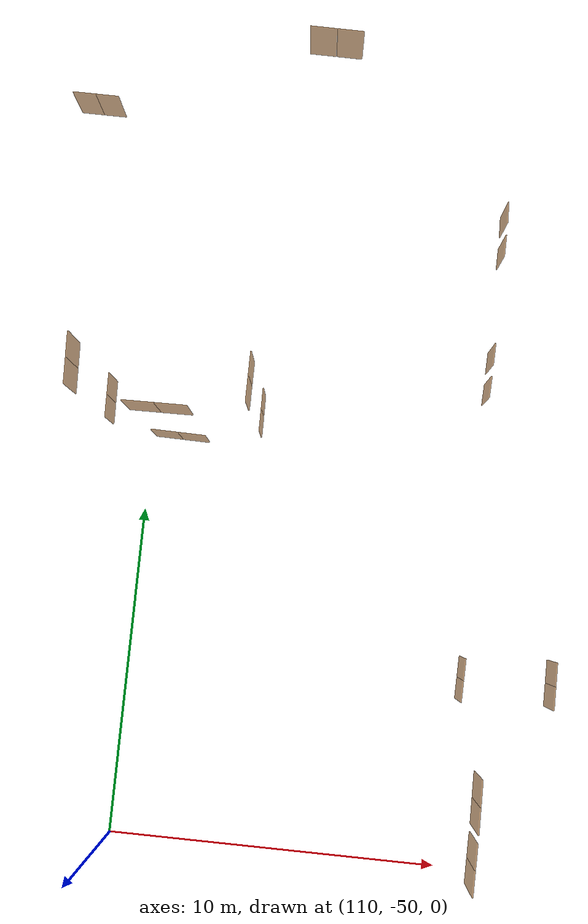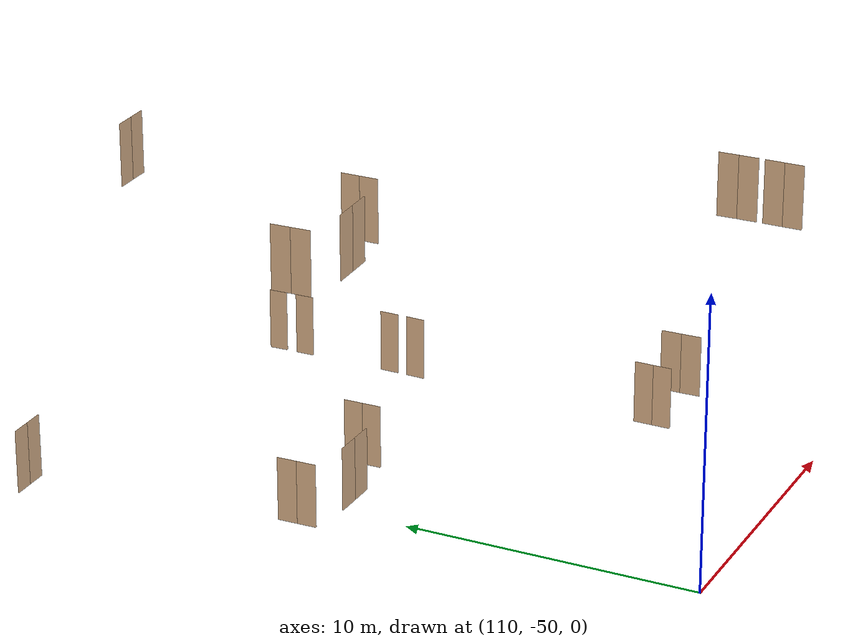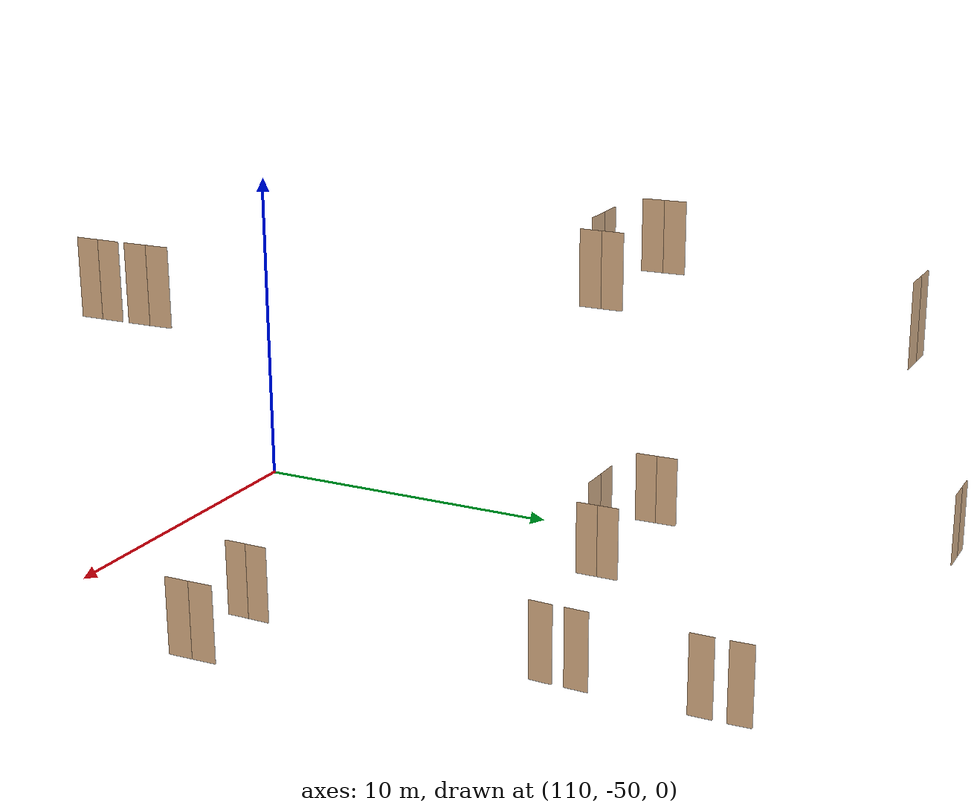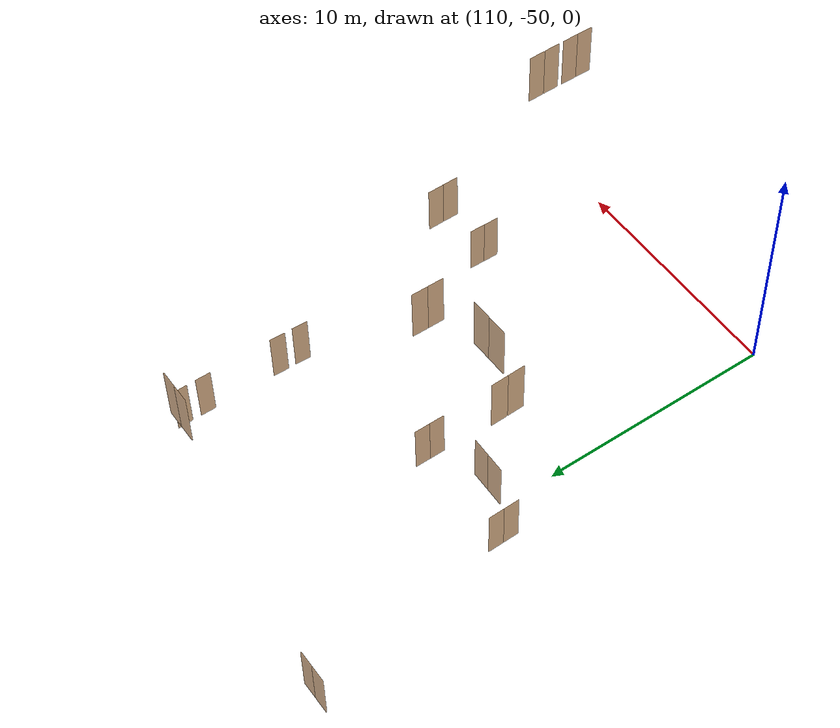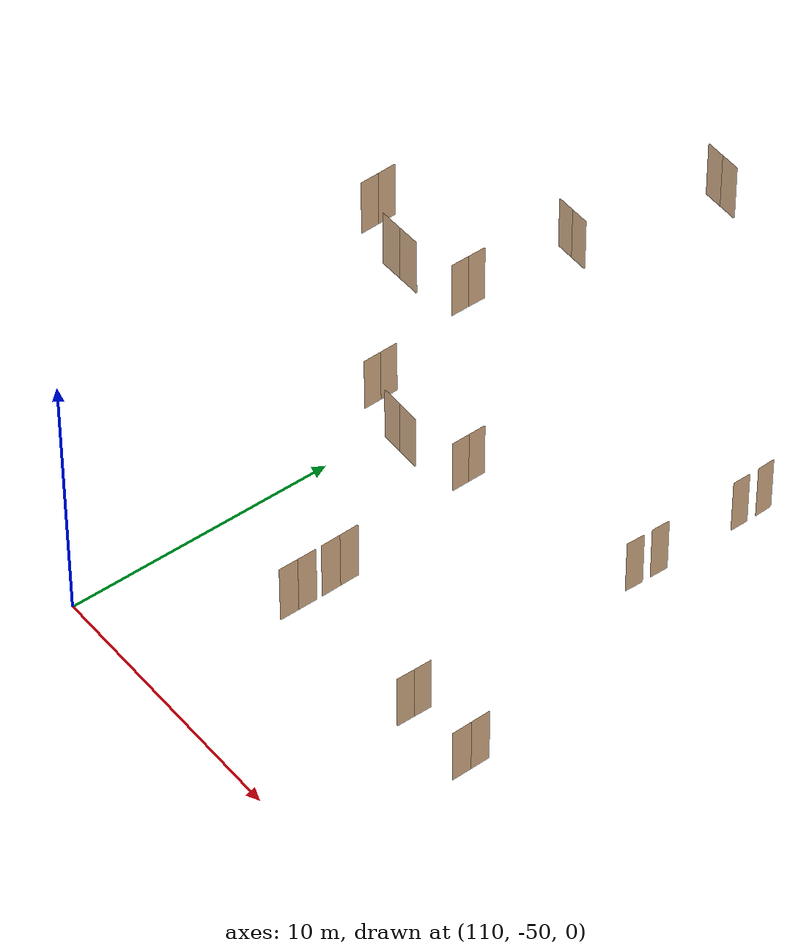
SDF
<sdf version="1.7">
 <world name="sim_world">
  <model name="TD2020CE">
   <pose>120.14336381928517 -30.01781770852497 0.0 0 0 -1.528039815718483</pose>
   <link name="right">
    <pose>0 0 1.11 0 0 0</pose>
    <visual name="right_visual">
     <geometry><box><size>0.6442829253050271 0.03 2.2</size></box></geometry>
     <material>
      <ambient>0.5 0.25 0 0.6</ambient>
      <diffuse>0.5 0.25 0 0.6</diffuse>
      <pbr><metal><metalness>0.0</metalness></metal></pbr>
     </material>
    </visual>
    <collision name="right_collision">
     <geometry><box><size>0.6442829253050271 0.03 2.2</size></box></geometry>
     <surface><contact><collide_bitmask>0x02</collide_bitmask></contact></surface>
    </collision>
    <inertial>
     <mass>50.0</mass>
     <inertia><ixx>20.17041666666667</ixx><iyy>21.896252032665018</iyy><izz>1.7333353659983464</izz></inertia>
    </inertial>
   </link>
   <joint name="right_joint" type="revolute">
    <parent>world</parent>
    <child>right</child>
    <axis><xyz>0 0 -1</xyz><limit><lower>0</lower><upper>1.57</upper></limit></axis>
    <pose>0.32714146265251354 0 0 0 0 0</pose>
   </joint>
   <plugin name="register_component" filename="libregister_component.so">
    <component name="Door">
     <v_max_door>0.5</v_max_door>
     <a_max_door>0.3</a_max_door>
     <a_nom_door>0.15</a_nom_door>
     <dx_min_door>0.01</dx_min_door>
     <f_max_door>500.0</f_max_door>
     <ros_interface>true</ros_interface>
     <door name="TD2020CE" type="SwingDoor" left_joint_name="empty_joint" right_joint_name="right_joint"/>
    </component>
   </plugin>
  </model>
  <model name="TD2019CE">
   <pose>120.15734698546525 -31.04027220638623 0.0 0 0 1.5707963267948966</pose>
   <link name="right">
    <pose>0 0 1.11 0 0 0</pose>
    <visual name="right_visual">
     <geometry><box><size>0.6541442813301737 0.03 2.2</size></box></geometry>
     <material>
      <ambient>0.5 0.25 0 0.6</ambient>
      <diffuse>0.5 0.25 0 0.6</diffuse>
      <pbr><metal><metalness>0.0</metalness></metal></pbr>
     </material>
    </visual>
    <collision name="right_collision">
     <geometry><box><size>0.6541442813301737 0.03 2.2</size></box></geometry>
     <surface><contact><collide_bitmask>0x02</collide_bitmask></contact></surface>
    </collision>
    <inertial>
     <mass>50.0</mass>
     <inertia><ixx>20.17041666666667</ixx><iyy>21.949603086654044</iyy><izz>1.7866864199873727</izz></inertia>
    </inertial>
   </link>
   <joint name="right_joint" type="revolute">
    <parent>world</parent>
    <child>right</child>
    <axis><xyz>0 0 1</xyz><limit><lower>0</lower><upper>1.57</upper></limit></axis>
    <pose>0.33207214066508683 0 0 0 0 0</pose>
   </joint>
   <plugin name="register_component" filename="libregister_component.so">
    <component name="Door">
     <v_max_door>0.5</v_max_door>
     <a_max_door>0.3</a_max_door>
     <a_nom_door>0.15</a_nom_door>
     <dx_min_door>0.01</dx_min_door>
     <f_max_door>500.0</f_max_door>
     <ros_interface>true</ros_interface>
     <door name="TD2019CE" type="SwingDoor" left_joint_name="empty_joint" right_joint_name="right_joint"/>
    </component>
   </plugin>
  </model>
  <model name="TD2018CE">
   <pose>120.1503554023752 -34.35754832249353 0.0 0 0 -1.5914136677952118</pose>
   <link name="right">
    <pose>0 0 1.11 0 0 0</pose>
    <visual name="right_visual">
     <geometry><box><size>0.6682716004693073 0.03 2.2</size></box></geometry>
     <material>
      <ambient>0.5 0.25 0 0.6</ambient>
      <diffuse>0.5 0.25 0 0.6</diffuse>
      <pbr><metal><metalness>0.0</metalness></metal></pbr>
     </material>
    </visual>
    <collision name="right_collision">
     <geometry><box><size>0.6682716004693073 0.03 2.2</size></box></geometry>
     <surface><contact><collide_bitmask>0x02</collide_bitmask></contact></surface>
    </collision>
    <inertial>
     <mass>50.0</mass>
     <inertia><ixx>20.17041666666667</ixx><iyy>22.02744554997421</iyy><izz>1.86452888330754</izz></inertia>
    </inertial>
   </link>
   <joint name="right_joint" type="revolute">
    <parent>world</parent>
    <child>right</child>
    <axis><xyz>0 0 -1</xyz><limit><lower>0</lower><upper>1.57</upper></limit></axis>
    <pose>0.3391358002346537 0 0 0 0 0</pose>
   </joint>
   <plugin name="register_component" filename="libregister_component.so">
    <component name="Door">
     <v_max_door>0.5</v_max_door>
     <a_max_door>0.3</a_max_door>
     <a_nom_door>0.15</a_nom_door>
     <dx_min_door>0.01</dx_min_door>
     <f_max_door>500.0</f_max_door>
     <ros_interface>true</ros_interface>
     <door name="TD2018CE" type="SwingDoor" left_joint_name="empty_joint" right_joint_name="right_joint"/>
    </component>
   </plugin>
  </model>
  <model name="TD2017CE">
   <pose>120.1308507933696 -35.356806027020724 0.0 0 0 1.5338583430210873</pose>
   <link name="right">
    <pose>0 0 1.11 0 0 0</pose>
    <visual name="right_visual">
     <geometry><box><size>0.6676694655481198 0.03 2.2</size></box></geometry>
     <material>
      <ambient>0.5 0.25 0 0.6</ambient>
      <diffuse>0.5 0.25 0 0.6</diffuse>
      <pbr><metal><metalness>0.0</metalness></metal></pbr>
     </material>
    </visual>
    <collision name="right_collision">
     <geometry><box><size>0.6676694655481198 0.03 2.2</size></box></geometry>
     <surface><contact><collide_bitmask>0x02</collide_bitmask></contact></surface>
    </collision>
    <inertial>
     <mass>50.0</mass>
     <inertia><ixx>20.17041666666667</ixx><iyy>22.024093813438803</iyy><izz>1.8611771467721332</izz></inertia>
    </inertial>
   </link>
   <joint name="right_joint" type="revolute">
    <parent>world</parent>
    <child>right</child>
    <axis><xyz>0 0 1</xyz><limit><lower>0</lower><upper>1.57</upper></limit></axis>
    <pose>0.3388347327740599 0 0 0 0 0</pose>
   </joint>
   <plugin name="register_component" filename="libregister_component.so">
    <component name="Door">
     <v_max_door>0.5</v_max_door>
     <a_max_door>0.3</a_max_door>
     <a_nom_door>0.15</a_nom_door>
     <dx_min_door>0.01</dx_min_door>
     <f_max_door>500.0</f_max_door>
     <ros_interface>true</ros_interface>
     <door name="TD2017CE" type="SwingDoor" left_joint_name="empty_joint" right_joint_name="right_joint"/>
    </component>
   </plugin>
  </model>
  <model name="TD2016CE2">
   <pose>113.35449174907512 -36.75249659295361 0.0 0 0 1.58079360113094</pose>
   <link name="right">
    <pose>0.32835147504611817 0 1.11 0 0 0</pose>
    <visual name="right_visual">
     <geometry><box><size>0.6467029500922363 0.03 2.2</size></box></geometry>
     <material>
      <ambient>0.5 0.25 0 0.6</ambient>
      <diffuse>0.5 0.25 0 0.6</diffuse>
      <pbr><metal><metalness>0.0</metalness></metal></pbr>
     </material>
    </visual>
    <collision name="right_collision">
     <geometry><box><size>0.6467029500922363 0.03 2.2</size></box></geometry>
     <surface><contact><collide_bitmask>0x02</collide_bitmask></contact></surface>
    </collision>
    <inertial>
     <mass>50.0</mass>
     <inertia><ixx>20.17041666666667</ixx><iyy>21.909269606908346</iyy><izz>1.746352940241673</izz></inertia>
    </inertial>
   </link>
   <joint name="right_joint" type="revolute">
    <parent>world</parent>
    <child>right</child>
    <axis><xyz>0 0 -1</xyz><limit><lower>0</lower><upper>1.57</upper></limit></axis>
    <pose>0.32835147504611817 0 0 0 0 0</pose>
   </joint>
   <link name="left">
    <pose>-0.32835147504611817 0 1.11 0 0 0</pose>
    <visual name="left_visual">
     <geometry><box><size>0.6467029500922363 0.03 2.2</size></box></geometry>
     <material>
      <ambient>0.5 0.25 0 0.6</ambient>
      <diffuse>0.5 0.25 0 0.6</diffuse>
      <pbr><metal><metalness>0.0</metalness></metal></pbr>
     </material>
    </visual>
    <collision name="left_collision">
     <geometry><box><size>0.6467029500922363 0.03 2.2</size></box></geometry>
     <surface><contact><collide_bitmask>0x02</collide_bitmask></contact></surface>
    </collision>
    <inertial>
     <mass>50.0</mass>
     <inertia><ixx>20.17041666666667</ixx><iyy>21.909269606908346</iyy><izz>1.746352940241673</izz></inertia>
    </inertial>
   </link>
   <joint name="left_joint" type="revolute">
    <parent>world</parent>
    <child>left</child>
    <axis><xyz>0 0 -1</xyz><limit><lower>-1.57</lower><upper>0</upper></limit></axis>
    <pose>-0.32835147504611817 0 0 0 0 0</pose>
   </joint>
   <plugin name="register_component" filename="libregister_component.so">
    <component name="Door">
     <v_max_door>0.5</v_max_door>
     <a_max_door>0.3</a_max_door>
     <a_nom_door>0.15</a_nom_door>
     <dx_min_door>0.01</dx_min_door>
     <f_max_door>500.0</f_max_door>
     <ros_interface>true</ros_interface>
     <door name="TD2016CE2" type="DoubleSwingDoor" left_joint_name="left_joint" right_joint_name="right_joint"/>
    </component>
   </plugin>
  </model>
  <model name="TD2022CE1">
   <pose>108.69870342312444 -36.7853334663428 0.0 0 0 -1.551369535946799</pose>
   <link name="right">
    <pose>0.3382521992801837 0 1.11 0 0 0</pose>
    <visual name="right_visual">
     <geometry><box><size>0.6665043985603674 0.03 2.2</size></box></geometry>
     <material>
      <ambient>0.5 0.25 0 0.6</ambient>
      <diffuse>0.5 0.25 0 0.6</diffuse>
      <pbr><metal><metalness>0.0</metalness></metal></pbr>
     </material>
    </visual>
    <collision name="right_collision">
     <geometry><box><size>0.6665043985603674 0.03 2.2</size></box></geometry>
     <surface><contact><collide_bitmask>0x02</collide_bitmask></contact></surface>
    </collision>
    <inertial>
     <mass>50.0</mass>
     <inertia><ixx>20.17041666666667</ixx><iyy>22.017617138751326</iyy><izz>1.8547004720846545</izz></inertia>
    </inertial>
   </link>
   <joint name="right_joint" type="revolute">
    <parent>world</parent>
    <child>right</child>
    <axis><xyz>0 0 -1</xyz><limit><lower>0</lower><upper>1.57</upper></limit></axis>
    <pose>0.3382521992801837 0 0 0 0 0</pose>
   </joint>
   <link name="left">
    <pose>-0.3382521992801837 0 1.11 0 0 0</pose>
    <visual name="left_visual">
     <geometry><box><size>0.6665043985603674 0.03 2.2</size></box></geometry>
     <material>
      <ambient>0.5 0.25 0 0.6</ambient>
      <diffuse>0.5 0.25 0 0.6</diffuse>
      <pbr><metal><metalness>0.0</metalness></metal></pbr>
     </material>
    </visual>
    <collision name="left_collision">
     <geometry><box><size>0.6665043985603674 0.03 2.2</size></box></geometry>
     <surface><contact><collide_bitmask>0x02</collide_bitmask></contact></surface>
    </collision>
    <inertial>
     <mass>50.0</mass>
     <inertia><ixx>20.17041666666667</ixx><iyy>22.017617138751326</iyy><izz>1.8547004720846545</izz></inertia>
    </inertial>
   </link>
   <joint name="left_joint" type="revolute">
    <parent>world</parent>
    <child>left</child>
    <axis><xyz>0 0 -1</xyz><limit><lower>-1.57</lower><upper>0</upper></limit></axis>
    <pose>-0.3382521992801837 0 0 0 0 0</pose>
   </joint>
   <plugin name="register_component" filename="libregister_component.so">
    <component name="Door">
     <v_max_door>0.5</v_max_door>
     <a_max_door>0.3</a_max_door>
     <a_nom_door>0.15</a_nom_door>
     <dx_min_door>0.01</dx_min_door>
     <f_max_door>500.0</f_max_door>
     <ros_interface>true</ros_interface>
     <door name="TD2022CE1" type="DoubleSwingDoor" left_joint_name="left_joint" right_joint_name="right_joint"/>
    </component>
   </plugin>
  </model>
  <model name="TD2014CP">
   <pose>110.94450540262682 -37.69809978904824 0.0 0 0 3.1257248448701245</pose>
   <link name="right">
    <pose>0.4137562921105559 0 1.11 0 0 0</pose>
    <visual name="right_visual">
     <geometry><box><size>0.8175125842211118 0.03 2.2</size></box></geometry>
     <material>
      <ambient>0.5 0.25 0 0.6</ambient>
      <diffuse>0.5 0.25 0 0.6</diffuse>
      <pbr><metal><metalness>0.0</metalness></metal></pbr>
     </material>
    </visual>
    <collision name="right_collision">
     <geometry><box><size>0.8175125842211118 0.03 2.2</size></box></geometry>
     <surface><contact><collide_bitmask>0x02</collide_bitmask></contact></surface>
    </collision>
    <inertial>
     <mass>50.0</mass>
     <inertia><ixx>20.17041666666667</ixx><iyy>22.95136177233284</iyy><izz>2.788445105666169</izz></inertia>
    </inertial>
   </link>
   <joint name="right_joint" type="revolute">
    <parent>world</parent>
    <child>right</child>
    <axis><xyz>0 0 -1</xyz><limit><lower>0</lower><upper>1.57</upper></limit></axis>
    <pose>0.4137562921105559 0 0 0 0 0</pose>
   </joint>
   <link name="left">
    <pose>-0.4137562921105559 0 1.11 0 0 0</pose>
    <visual name="left_visual">
     <geometry><box><size>0.8175125842211118 0.03 2.2</size></box></geometry>
     <material>
      <ambient>0.5 0.25 0 0.6</ambient>
      <diffuse>0.5 0.25 0 0.6</diffuse>
      <pbr><metal><metalness>0.0</metalness></metal></pbr>
     </material>
    </visual>
    <collision name="left_collision">
     <geometry><box><size>0.8175125842211118 0.03 2.2</size></box></geometry>
     <surface><contact><collide_bitmask>0x02</collide_bitmask></contact></surface>
    </collision>
    <inertial>
     <mass>50.0</mass>
     <inertia><ixx>20.17041666666667</ixx><iyy>22.95136177233284</iyy><izz>2.788445105666169</izz></inertia>
    </inertial>
   </link>
   <joint name="left_joint" type="revolute">
    <parent>world</parent>
    <child>left</child>
    <axis><xyz>0 0 -1</xyz><limit><lower>-1.57</lower><upper>0</upper></limit></axis>
    <pose>-0.4137562921105559 0 0 0 0 0</pose>
   </joint>
   <plugin name="register_component" filename="libregister_component.so">
    <component name="Door">
     <v_max_door>0.5</v_max_door>
     <a_max_door>0.3</a_max_door>
     <a_nom_door>0.15</a_nom_door>
     <dx_min_door>0.01</dx_min_door>
     <f_max_door>500.0</f_max_door>
     <ros_interface>true</ros_interface>
     <door name="TD2014CP" type="DoubleSwingDoor" left_joint_name="left_joint" right_joint_name="right_joint"/>
    </component>
   </plugin>
  </model>
  <model name="TD2022CE2">
   <pose>107.33939602312722 -27.703592483276235 0.0 0 0 0.0</pose>
   <link name="right">
    <pose>0.35131302221866534 0 1.11 0 0 0</pose>
    <visual name="right_visual">
     <geometry><box><size>0.6926260444373307 0.03 2.2</size></box></geometry>
     <material>
      <ambient>0.5 0.25 0 0.6</ambient>
      <diffuse>0.5 0.25 0 0.6</diffuse>
      <pbr><metal><metalness>0.0</metalness></metal></pbr>
     </material>
    </visual>
    <collision name="right_collision">
     <geometry><box><size>0.6926260444373307 0.03 2.2</size></box></geometry>
     <surface><contact><collide_bitmask>0x02</collide_bitmask></contact></surface>
    </collision>
    <inertial>
     <mass>50.0</mass>
     <inertia><ixx>20.17041666666667</ixx><iyy>22.165545155970435</iyy><izz>2.0026284893037634</izz></inertia>
    </inertial>
   </link>
   <joint name="right_joint" type="revolute">
    <parent>world</parent>
    <child>right</child>
    <axis><xyz>0 0 -1</xyz><limit><lower>0</lower><upper>1.57</upper></limit></axis>
    <pose>0.35131302221866534 0 0 0 0 0</pose>
   </joint>
   <link name="left">
    <pose>-0.35131302221866534 0 1.11 0 0 0</pose>
    <visual name="left_visual">
     <geometry><box><size>0.6926260444373307 0.03 2.2</size></box></geometry>
     <material>
      <ambient>0.5 0.25 0 0.6</ambient>
      <diffuse>0.5 0.25 0 0.6</diffuse>
      <pbr><metal><metalness>0.0</metalness></metal></pbr>
     </material>
    </visual>
    <collision name="left_collision">
     <geometry><box><size>0.6926260444373307 0.03 2.2</size></box></geometry>
     <surface><contact><collide_bitmask>0x02</collide_bitmask></contact></surface>
    </collision>
    <inertial>
     <mass>50.0</mass>
     <inertia><ixx>20.17041666666667</ixx><iyy>22.165545155970435</iyy><izz>2.0026284893037634</izz></inertia>
    </inertial>
   </link>
   <joint name="left_joint" type="revolute">
    <parent>world</parent>
    <child>left</child>
    <axis><xyz>0 0 -1</xyz><limit><lower>-1.57</lower><upper>0</upper></limit></axis>
    <pose>-0.35131302221866534 0 0 0 0 0</pose>
   </joint>
   <plugin name="register_component" filename="libregister_component.so">
    <component name="Door">
     <v_max_door>0.5</v_max_door>
     <a_max_door>0.3</a_max_door>
     <a_nom_door>0.15</a_nom_door>
     <dx_min_door>0.01</dx_min_door>
     <f_max_door>500.0</f_max_door>
     <ros_interface>true</ros_interface>
     <door name="TD2022CE2" type="DoubleSwingDoor" left_joint_name="left_joint" right_joint_name="right_joint"/>
    </component>
   </plugin>
  </model>
  <model name="TD2011CP2">
   <pose>120.18099267659 -44.177254828569716 0.0 0 0 -1.5838520152937463</pose>
   <link name="right">
    <pose>0.32965935391274803 0 1.11 0 0 0</pose>
    <visual name="right_visual">
     <geometry><box><size>0.649318707825496 0.03 2.2</size></box></geometry>
     <material>
      <ambient>0.5 0.25 0 0.6</ambient>
      <diffuse>0.5 0.25 0 0.6</diffuse>
      <pbr><metal><metalness>0.0</metalness></metal></pbr>
     </material>
    </visual>
    <collision name="right_collision">
     <geometry><box><size>0.649318707825496 0.03 2.2</size></box></geometry>
     <surface><contact><collide_bitmask>0x02</collide_bitmask></contact></surface>
    </collision>
    <inertial>
     <mass>50.0</mass>
     <inertia><ixx>20.17041666666667</ixx><iyy>21.923394934717386</iyy><izz>1.7604782680507165</izz></inertia>
    </inertial>
   </link>
   <joint name="right_joint" type="revolute">
    <parent>world</parent>
    <child>right</child>
    <axis><xyz>0 0 -1</xyz><limit><lower>0</lower><upper>1.57</upper></limit></axis>
    <pose>0.32965935391274803 0 0 0 0 0</pose>
   </joint>
   <link name="left">
    <pose>-0.32965935391274803 0 1.11 0 0 0</pose>
    <visual name="left_visual">
     <geometry><box><size>0.649318707825496 0.03 2.2</size></box></geometry>
     <material>
      <ambient>0.5 0.25 0 0.6</ambient>
      <diffuse>0.5 0.25 0 0.6</diffuse>
      <pbr><metal><metalness>0.0</metalness></metal></pbr>
     </material>
    </visual>
    <collision name="left_collision">
     <geometry><box><size>0.649318707825496 0.03 2.2</size></box></geometry>
     <surface><contact><collide_bitmask>0x02</collide_bitmask></contact></surface>
    </collision>
    <inertial>
     <mass>50.0</mass>
     <inertia><ixx>20.17041666666667</ixx><iyy>21.923394934717386</iyy><izz>1.7604782680507165</izz></inertia>
    </inertial>
   </link>
   <joint name="left_joint" type="revolute">
    <parent>world</parent>
    <child>left</child>
    <axis><xyz>0 0 -1</xyz><limit><lower>-1.57</lower><upper>0</upper></limit></axis>
    <pose>-0.32965935391274803 0 0 0 0 0</pose>
   </joint>
   <plugin name="register_component" filename="libregister_component.so">
    <component name="Door">
     <v_max_door>0.5</v_max_door>
     <a_max_door>0.3</a_max_door>
     <a_nom_door>0.15</a_nom_door>
     <dx_min_door>0.01</dx_min_door>
     <f_max_door>500.0</f_max_door>
     <ros_interface>true</ros_interface>
     <door name="TD2011CP2" type="DoubleSwingDoor" left_joint_name="left_joint" right_joint_name="right_joint"/>
    </component>
   </plugin>
  </model>
  <model name="TD2011CP3">
   <pose>122.9242519652935 -44.07919310619285 0.0 0 0 -1.5517822454962154</pose>
   <link name="right">
    <pose>0.36093978943000277 0 1.11 0 0 0</pose>
    <visual name="right_visual">
     <geometry><box><size>0.7118795788600055 0.03 2.2</size></box></geometry>
     <material>
      <ambient>0.5 0.25 0 0.6</ambient>
      <diffuse>0.5 0.25 0 0.6</diffuse>
      <pbr><metal><metalness>0.0</metalness></metal></pbr>
     </material>
    </visual>
    <collision name="right_collision">
     <geometry><box><size>0.7118795788600055 0.03 2.2</size></box></geometry>
     <surface><contact><collide_bitmask>0x02</collide_bitmask></contact></surface>
    </collision>
    <inertial>
     <mass>50.0</mass>
     <inertia><ixx>20.17041666666667</ixx><iyy>22.27821889499125</iyy><izz>2.1153022283245786</izz></inertia>
    </inertial>
   </link>
   <joint name="right_joint" type="revolute">
    <parent>world</parent>
    <child>right</child>
    <axis><xyz>0 0 -1</xyz><limit><lower>0</lower><upper>1.57</upper></limit></axis>
    <pose>0.36093978943000277 0 0 0 0 0</pose>
   </joint>
   <link name="left">
    <pose>-0.36093978943000277 0 1.11 0 0 0</pose>
    <visual name="left_visual">
     <geometry><box><size>0.7118795788600055 0.03 2.2</size></box></geometry>
     <material>
      <ambient>0.5 0.25 0 0.6</ambient>
      <diffuse>0.5 0.25 0 0.6</diffuse>
      <pbr><metal><metalness>0.0</metalness></metal></pbr>
     </material>
    </visual>
    <collision name="left_collision">
     <geometry><box><size>0.7118795788600055 0.03 2.2</size></box></geometry>
     <surface><contact><collide_bitmask>0x02</collide_bitmask></contact></surface>
    </collision>
    <inertial>
     <mass>50.0</mass>
     <inertia><ixx>20.17041666666667</ixx><iyy>22.27821889499125</iyy><izz>2.1153022283245786</izz></inertia>
    </inertial>
   </link>
   <joint name="left_joint" type="revolute">
    <parent>world</parent>
    <child>left</child>
    <axis><xyz>0 0 -1</xyz><limit><lower>-1.57</lower><upper>0</upper></limit></axis>
    <pose>-0.36093978943000277 0 0 0 0 0</pose>
   </joint>
   <plugin name="register_component" filename="libregister_component.so">
    <component name="Door">
     <v_max_door>0.5</v_max_door>
     <a_max_door>0.3</a_max_door>
     <a_nom_door>0.15</a_nom_door>
     <dx_min_door>0.01</dx_min_door>
     <f_max_door>500.0</f_max_door>
     <ros_interface>true</ros_interface>
     <door name="TD2011CP3" type="DoubleSwingDoor" left_joint_name="left_joint" right_joint_name="right_joint"/>
    </component>
   </plugin>
  </model>
  <model name="TD2106AA2">
   <pose>108.62603792614706 -36.76668596452639 8.0 0 0 -1.5384201557260895</pose>
   <link name="right">
    <pose>0.34166069449965186 0 1.11 0 0 0</pose>
    <visual name="right_visual">
     <geometry><box><size>0.6733213889993037 0.03 2.2</size></box></geometry>
     <material>
      <ambient>0.5 0.25 0 0.6</ambient>
      <diffuse>0.5 0.25 0 0.6</diffuse>
      <pbr><metal><metalness>0.0</metalness></metal></pbr>
     </material>
    </visual>
    <collision name="right_collision">
     <geometry><box><size>0.6733213889993037 0.03 2.2</size></box></geometry>
     <surface><contact><collide_bitmask>0x02</collide_bitmask></contact></surface>
    </collision>
    <inertial>
     <mass>50.0</mass>
     <inertia><ixx>20.17041666666667</ixx><iyy>22.0556737203498</iyy><izz>1.8927570536831322</izz></inertia>
    </inertial>
   </link>
   <joint name="right_joint" type="revolute">
    <parent>world</parent>
    <child>right</child>
    <axis><xyz>0 0 -1</xyz><limit><lower>0</lower><upper>1.57</upper></limit></axis>
    <pose>0.34166069449965186 0 0 0 0 0</pose>
   </joint>
   <link name="left">
    <pose>-0.34166069449965186 0 1.11 0 0 0</pose>
    <visual name="left_visual">
     <geometry><box><size>0.6733213889993037 0.03 2.2</size></box></geometry>
     <material>
      <ambient>0.5 0.25 0 0.6</ambient>
      <diffuse>0.5 0.25 0 0.6</diffuse>
      <pbr><metal><metalness>0.0</metalness></metal></pbr>
     </material>
    </visual>
    <collision name="left_collision">
     <geometry><box><size>0.6733213889993037 0.03 2.2</size></box></geometry>
     <surface><contact><collide_bitmask>0x02</collide_bitmask></contact></surface>
    </collision>
    <inertial>
     <mass>50.0</mass>
     <inertia><ixx>20.17041666666667</ixx><iyy>22.0556737203498</iyy><izz>1.8927570536831322</izz></inertia>
    </inertial>
   </link>
   <joint name="left_joint" type="revolute">
    <parent>world</parent>
    <child>left</child>
    <axis><xyz>0 0 -1</xyz><limit><lower>-1.57</lower><upper>0</upper></limit></axis>
    <pose>-0.34166069449965186 0 0 0 0 0</pose>
   </joint>
   <plugin name="register_component" filename="libregister_component.so">
    <component name="Door">
     <v_max_door>0.5</v_max_door>
     <a_max_door>0.3</a_max_door>
     <a_nom_door>0.15</a_nom_door>
     <dx_min_door>0.01</dx_min_door>
     <f_max_door>500.0</f_max_door>
     <ros_interface>true</ros_interface>
     <door name="TD2106AA2" type="DoubleSwingDoor" left_joint_name="left_joint" right_joint_name="right_joint"/>
    </component>
   </plugin>
  </model>
  <model name="TD2101AA1">
   <pose>114.59967721067895 -27.642042988957044 8.0 0 0 -0.0045263303967613</pose>
   <link name="right">
    <pose>0.35061744720710414 0 1.11 0 0 0</pose>
    <visual name="right_visual">
     <geometry><box><size>0.6912348944142083 0.03 2.2</size></box></geometry>
     <material>
      <ambient>0.5 0.25 0 0.6</ambient>
      <diffuse>0.5 0.25 0 0.6</diffuse>
      <pbr><metal><metalness>0.0</metalness></metal></pbr>
     </material>
    </visual>
    <collision name="right_collision">
     <geometry><box><size>0.6912348944142083 0.03 2.2</size></box></geometry>
     <surface><contact><collide_bitmask>0x02</collide_bitmask></contact></surface>
    </collision>
    <inertial>
     <mass>50.0</mass>
     <inertia><ixx>20.17041666666667</ixx><iyy>22.15752366356593</iyy><izz>1.994606996899257</izz></inertia>
    </inertial>
   </link>
   <joint name="right_joint" type="revolute">
    <parent>world</parent>
    <child>right</child>
    <axis><xyz>0 0 -1</xyz><limit><lower>0</lower><upper>1.57</upper></limit></axis>
    <pose>0.35061744720710414 0 0 0 0 0</pose>
   </joint>
   <link name="left">
    <pose>-0.35061744720710414 0 1.11 0 0 0</pose>
    <visual name="left_visual">
     <geometry><box><size>0.6912348944142083 0.03 2.2</size></box></geometry>
     <material>
      <ambient>0.5 0.25 0 0.6</ambient>
      <diffuse>0.5 0.25 0 0.6</diffuse>
      <pbr><metal><metalness>0.0</metalness></metal></pbr>
     </material>
    </visual>
    <collision name="left_collision">
     <geometry><box><size>0.6912348944142083 0.03 2.2</size></box></geometry>
     <surface><contact><collide_bitmask>0x02</collide_bitmask></contact></surface>
    </collision>
    <inertial>
     <mass>50.0</mass>
     <inertia><ixx>20.17041666666667</ixx><iyy>22.15752366356593</iyy><izz>1.994606996899257</izz></inertia>
    </inertial>
   </link>
   <joint name="left_joint" type="revolute">
    <parent>world</parent>
    <child>left</child>
    <axis><xyz>0 0 -1</xyz><limit><lower>-1.57</lower><upper>0</upper></limit></axis>
    <pose>-0.35061744720710414 0 0 0 0 0</pose>
   </joint>
   <plugin name="register_component" filename="libregister_component.so">
    <component name="Door">
     <v_max_door>0.5</v_max_door>
     <a_max_door>0.3</a_max_door>
     <a_nom_door>0.15</a_nom_door>
     <dx_min_door>0.01</dx_min_door>
     <f_max_door>500.0</f_max_door>
     <ros_interface>true</ros_interface>
     <door name="TD2101AA1" type="DoubleSwingDoor" left_joint_name="left_joint" right_joint_name="right_joint"/>
    </component>
   </plugin>
  </model>
  <model name="TD2101AA2">
   <pose>113.27457956205458 -36.77136408752044 8.0 0 0 1.5709753921216771</pose>
   <link name="right">
    <pose>0.32592286474607657 0 1.11 0 0 0</pose>
    <visual name="right_visual">
     <geometry><box><size>0.6418457294921531 0.03 2.2</size></box></geometry>
     <material>
      <ambient>0.5 0.25 0 0.6</ambient>
      <diffuse>0.5 0.25 0 0.6</diffuse>
      <pbr><metal><metalness>0.0</metalness></metal></pbr>
     </material>
    </visual>
    <collision name="right_collision">
     <geometry><box><size>0.6418457294921531 0.03 2.2</size></box></geometry>
     <surface><contact><collide_bitmask>0x02</collide_bitmask></contact></surface>
    </collision>
    <inertial>
     <mass>50.0</mass>
     <inertia><ixx>20.17041666666667</ixx><iyy>21.883191418613812</iyy><izz>1.7202747519471429</izz></inertia>
    </inertial>
   </link>
   <joint name="right_joint" type="revolute">
    <parent>world</parent>
    <child>right</child>
    <axis><xyz>0 0 -1</xyz><limit><lower>0</lower><upper>1.57</upper></limit></axis>
    <pose>0.32592286474607657 0 0 0 0 0</pose>
   </joint>
   <link name="left">
    <pose>-0.32592286474607657 0 1.11 0 0 0</pose>
    <visual name="left_visual">
     <geometry><box><size>0.6418457294921531 0.03 2.2</size></box></geometry>
     <material>
      <ambient>0.5 0.25 0 0.6</ambient>
      <diffuse>0.5 0.25 0 0.6</diffuse>
      <pbr><metal><metalness>0.0</metalness></metal></pbr>
     </material>
    </visual>
    <collision name="left_collision">
     <geometry><box><size>0.6418457294921531 0.03 2.2</size></box></geometry>
     <surface><contact><collide_bitmask>0x02</collide_bitmask></contact></surface>
    </collision>
    <inertial>
     <mass>50.0</mass>
     <inertia><ixx>20.17041666666667</ixx><iyy>21.883191418613812</iyy><izz>1.7202747519471429</izz></inertia>
    </inertial>
   </link>
   <joint name="left_joint" type="revolute">
    <parent>world</parent>
    <child>left</child>
    <axis><xyz>0 0 -1</xyz><limit><lower>-1.57</lower><upper>0</upper></limit></axis>
    <pose>-0.32592286474607657 0 0 0 0 0</pose>
   </joint>
   <plugin name="register_component" filename="libregister_component.so">
    <component name="Door">
     <v_max_door>0.5</v_max_door>
     <a_max_door>0.3</a_max_door>
     <a_nom_door>0.15</a_nom_door>
     <dx_min_door>0.01</dx_min_door>
     <f_max_door>500.0</f_max_door>
     <ros_interface>true</ros_interface>
     <door name="TD2101AA2" type="DoubleSwingDoor" left_joint_name="left_joint" right_joint_name="right_joint"/>
    </component>
   </plugin>
  </model>
  <model name="TD2116CP">
   <pose>110.96846471846871 -37.692886094462516 8.0 0 0 -3.1252823236133884</pose>
   <link name="right">
    <pose>0.42371950003651804 0 1.11 0 0 0</pose>
    <visual name="right_visual">
     <geometry><box><size>0.8374390000730361 0.03 2.2</size></box></geometry>
     <material>
      <ambient>0.5 0.25 0 0.6</ambient>
      <diffuse>0.5 0.25 0 0.6</diffuse>
      <pbr><metal><metalness>0.0</metalness></metal></pbr>
     </material>
    </visual>
    <collision name="right_collision">
     <geometry><box><size>0.8374390000730361 0.03 2.2</size></box></geometry>
     <surface><contact><collide_bitmask>0x02</collide_bitmask></contact></surface>
    </collision>
    <inertial>
     <mass>50.0</mass>
     <inertia><ixx>20.17041666666667</ixx><iyy>23.08876699518053</iyy><izz>2.9258503285138606</izz></inertia>
    </inertial>
   </link>
   <joint name="right_joint" type="revolute">
    <parent>world</parent>
    <child>right</child>
    <axis><xyz>0 0 -1</xyz><limit><lower>0</lower><upper>1.57</upper></limit></axis>
    <pose>0.42371950003651804 0 0 0 0 0</pose>
   </joint>
   <link name="left">
    <pose>-0.42371950003651804 0 1.11 0 0 0</pose>
    <visual name="left_visual">
     <geometry><box><size>0.8374390000730361 0.03 2.2</size></box></geometry>
     <material>
      <ambient>0.5 0.25 0 0.6</ambient>
      <diffuse>0.5 0.25 0 0.6</diffuse>
      <pbr><metal><metalness>0.0</metalness></metal></pbr>
     </material>
    </visual>
    <collision name="left_collision">
     <geometry><box><size>0.8374390000730361 0.03 2.2</size></box></geometry>
     <surface><contact><collide_bitmask>0x02</collide_bitmask></contact></surface>
    </collision>
    <inertial>
     <mass>50.0</mass>
     <inertia><ixx>20.17041666666667</ixx><iyy>23.08876699518053</iyy><izz>2.9258503285138606</izz></inertia>
    </inertial>
   </link>
   <joint name="left_joint" type="revolute">
    <parent>world</parent>
    <child>left</child>
    <axis><xyz>0 0 -1</xyz><limit><lower>-1.57</lower><upper>0</upper></limit></axis>
    <pose>-0.42371950003651804 0 0 0 0 0</pose>
   </joint>
   <plugin name="register_component" filename="libregister_component.so">
    <component name="Door">
     <v_max_door>0.5</v_max_door>
     <a_max_door>0.3</a_max_door>
     <a_nom_door>0.15</a_nom_door>
     <dx_min_door>0.01</dx_min_door>
     <f_max_door>500.0</f_max_door>
     <ros_interface>true</ros_interface>
     <door name="TD2116CP" type="DoubleSwingDoor" left_joint_name="left_joint" right_joint_name="right_joint"/>
    </component>
   </plugin>
  </model>
  <model name="TD2112CP1">
   <pose>120.1676609904941 -46.9178509273961 8.0 0 0 -1.551169341484848</pose>
   <link name="right">
    <pose>0.34453971376099324 0 1.11 0 0 0</pose>
    <visual name="right_visual">
     <geometry><box><size>0.6790794275219865 0.03 2.2</size></box></geometry>
     <material>
      <ambient>0.5 0.25 0 0.6</ambient>
      <diffuse>0.5 0.25 0 0.6</diffuse>
      <pbr><metal><metalness>0.0</metalness></metal></pbr>
     </material>
    </visual>
    <collision name="right_collision">
     <geometry><box><size>0.6790794275219865 0.03 2.2</size></box></geometry>
     <surface><contact><collide_bitmask>0x02</collide_bitmask></contact></surface>
    </collision>
    <inertial>
     <mass>50.0</mass>
     <inertia><ixx>20.17041666666667</ixx><iyy>22.08812028701496</iyy><izz>1.9252036203482872</izz></inertia>
    </inertial>
   </link>
   <joint name="right_joint" type="revolute">
    <parent>world</parent>
    <child>right</child>
    <axis><xyz>0 0 -1</xyz><limit><lower>0</lower><upper>1.57</upper></limit></axis>
    <pose>0.34453971376099324 0 0 0 0 0</pose>
   </joint>
   <link name="left">
    <pose>-0.34453971376099324 0 1.11 0 0 0</pose>
    <visual name="left_visual">
     <geometry><box><size>0.6790794275219865 0.03 2.2</size></box></geometry>
     <material>
      <ambient>0.5 0.25 0 0.6</ambient>
      <diffuse>0.5 0.25 0 0.6</diffuse>
      <pbr><metal><metalness>0.0</metalness></metal></pbr>
     </material>
    </visual>
    <collision name="left_collision">
     <geometry><box><size>0.6790794275219865 0.03 2.2</size></box></geometry>
     <surface><contact><collide_bitmask>0x02</collide_bitmask></contact></surface>
    </collision>
    <inertial>
     <mass>50.0</mass>
     <inertia><ixx>20.17041666666667</ixx><iyy>22.08812028701496</iyy><izz>1.9252036203482872</izz></inertia>
    </inertial>
   </link>
   <joint name="left_joint" type="revolute">
    <parent>world</parent>
    <child>left</child>
    <axis><xyz>0 0 -1</xyz><limit><lower>-1.57</lower><upper>0</upper></limit></axis>
    <pose>-0.34453971376099324 0 0 0 0 0</pose>
   </joint>
   <plugin name="register_component" filename="libregister_component.so">
    <component name="Door">
     <v_max_door>0.5</v_max_door>
     <a_max_door>0.3</a_max_door>
     <a_nom_door>0.15</a_nom_door>
     <dx_min_door>0.01</dx_min_door>
     <f_max_door>500.0</f_max_door>
     <ros_interface>true</ros_interface>
     <door name="TD2112CP1" type="DoubleSwingDoor" left_joint_name="left_joint" right_joint_name="right_joint"/>
    </component>
   </plugin>
  </model>
  <model name="TD2112CP2">
   <pose>120.18134067975436 -48.47802023001399 8.0 0 0 -1.570617261468096</pose>
   <link name="right">
    <pose>0.3364332472406861 0 1.11 0 0 0</pose>
    <visual name="right_visual">
     <geometry><box><size>0.6628664944813721 0.03 2.2</size></box></geometry>
     <material>
      <ambient>0.5 0.25 0 0.6</ambient>
      <diffuse>0.5 0.25 0 0.6</diffuse>
      <pbr><metal><metalness>0.0</metalness></metal></pbr>
     </material>
    </visual>
    <collision name="right_collision">
     <geometry><box><size>0.6628664944813721 0.03 2.2</size></box></geometry>
     <surface><contact><collide_bitmask>0x02</collide_bitmask></contact></surface>
    </collision>
    <inertial>
     <mass>50.0</mass>
     <inertia><ixx>20.17041666666667</ixx><iyy>21.99746662294177</iyy><izz>1.834549956275096</izz></inertia>
    </inertial>
   </link>
   <joint name="right_joint" type="revolute">
    <parent>world</parent>
    <child>right</child>
    <axis><xyz>0 0 -1</xyz><limit><lower>0</lower><upper>1.57</upper></limit></axis>
    <pose>0.3364332472406861 0 0 0 0 0</pose>
   </joint>
   <link name="left">
    <pose>-0.3364332472406861 0 1.11 0 0 0</pose>
    <visual name="left_visual">
     <geometry><box><size>0.6628664944813721 0.03 2.2</size></box></geometry>
     <material>
      <ambient>0.5 0.25 0 0.6</ambient>
      <diffuse>0.5 0.25 0 0.6</diffuse>
      <pbr><metal><metalness>0.0</metalness></metal></pbr>
     </material>
    </visual>
    <collision name="left_collision">
     <geometry><box><size>0.6628664944813721 0.03 2.2</size></box></geometry>
     <surface><contact><collide_bitmask>0x02</collide_bitmask></contact></surface>
    </collision>
    <inertial>
     <mass>50.0</mass>
     <inertia><ixx>20.17041666666667</ixx><iyy>21.99746662294177</iyy><izz>1.834549956275096</izz></inertia>
    </inertial>
   </link>
   <joint name="left_joint" type="revolute">
    <parent>world</parent>
    <child>left</child>
    <axis><xyz>0 0 -1</xyz><limit><lower>-1.57</lower><upper>0</upper></limit></axis>
    <pose>-0.3364332472406861 0 0 0 0 0</pose>
   </joint>
   <plugin name="register_component" filename="libregister_component.so">
    <component name="Door">
     <v_max_door>0.5</v_max_door>
     <a_max_door>0.3</a_max_door>
     <a_nom_door>0.15</a_nom_door>
     <dx_min_door>0.01</dx_min_door>
     <f_max_door>500.0</f_max_door>
     <ros_interface>true</ros_interface>
     <door name="TD2112CP2" type="DoubleSwingDoor" left_joint_name="left_joint" right_joint_name="right_joint"/>
    </component>
   </plugin>
  </model>
 </world>
</sdf>
